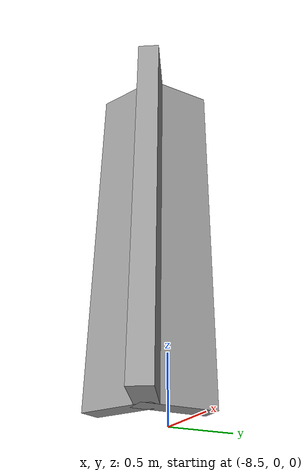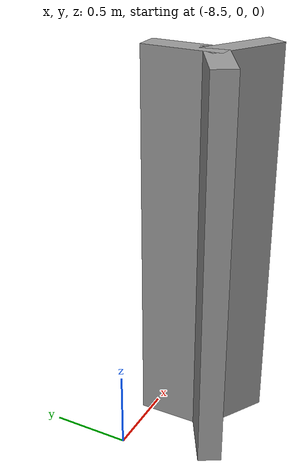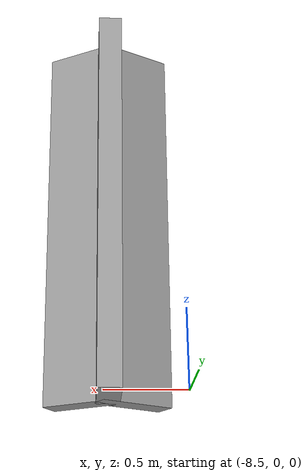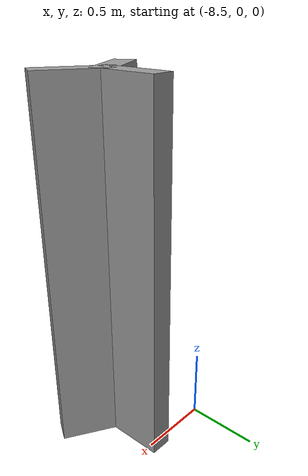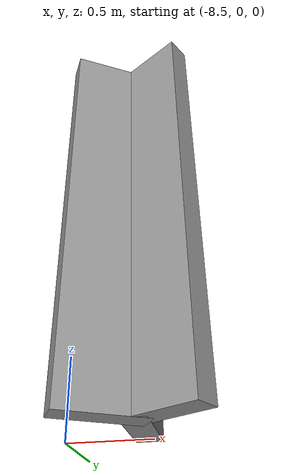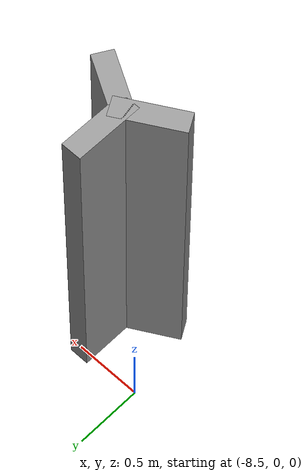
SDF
<?xml version='1.0'?>
<sdf version='1.6'>
  <model name='three_lines'>
    <pose frame=''>-8.03675 -0.289276 0 0 -0 0</pose>
    <link name='Wall_47'>
      <collision name='Wall_47_Collision'>
        <geometry>
          <box>
            <size>0.5 0.15 2.5</size>
          </box>
        </geometry>
        <pose frame=''>0 0 1.25 0 -0 0</pose>
      </collision>
      <visual name='Wall_47_Visual'>
        <pose frame=''>0 0 1.25 0 -0 0</pose>
        <geometry>
          <box>
            <size>0.5 0.15 2.5</size>
          </box>
        </geometry>
        <material>
          <script>
            <uri>file://media/materials/scripts/gazebo.material</uri>
            <name>Gazebo/Grey</name>
          </script>
          <ambient>1 1 1 1</ambient>
        </material>
        <meta>
          <layer>0</layer>
        </meta>
      </visual>
      <pose frame=''>0 0.101226 0 0 0 -1.5708</pose>
    </link>
    <link name='Wall_51'>
      <collision name='Wall_51_Collision'>
        <geometry>
          <box>
            <size>0.5 0.15 2.5</size>
          </box>
        </geometry>
        <pose frame=''>0 0 1.25 0 -0 0</pose>
      </collision>
      <visual name='Wall_51_Visual'>
        <pose frame=''>0 0 1.25 0 -0 0</pose>
        <geometry>
          <box>
            <size>0.5 0.15 2.5</size>
          </box>
        </geometry>
        <material>
          <script>
            <uri>file://media/materials/scripts/gazebo.material</uri>
            <name>Gazebo/Grey</name>
          </script>
          <ambient>1 1 1 1</ambient>
        </material>
        <meta>
          <layer>0</layer>
        </meta>
      </visual>
      <pose frame=''>-0.151555 -0.161274 0 0 0 -2.61799</pose>
    </link>
    <link name='Wall_53'>
      <collision name='Wall_53_Collision'>
        <geometry>
          <box>
            <size>0.5 0.15 2.5</size>
          </box>
        </geometry>
        <pose frame=''>0 0 1.25 0 -0 0</pose>
      </collision>
      <visual name='Wall_53_Visual'>
        <pose frame=''>0 0 1.25 0 -0 0</pose>
        <geometry>
          <box>
            <size>0.5 0.15 2.5</size>
          </box>
        </geometry>
        <material>
          <script>
            <uri>file://media/materials/scripts/gazebo.material</uri>
            <name>Gazebo/Grey</name>
          </script>
          <ambient>1 1 1 1</ambient>
        </material>
        <meta>
          <layer>0</layer>
        </meta>
      </visual>
      <pose frame=''>0.151555 -0.161274 0 0 0 -0.523599</pose>
    </link>
    <static>1</static>
  </model>
</sdf>
